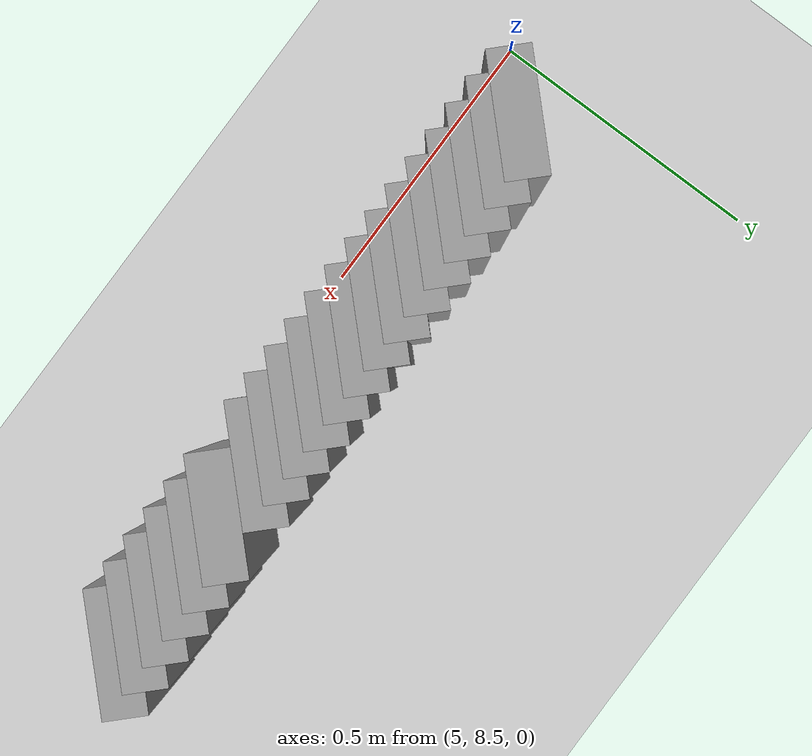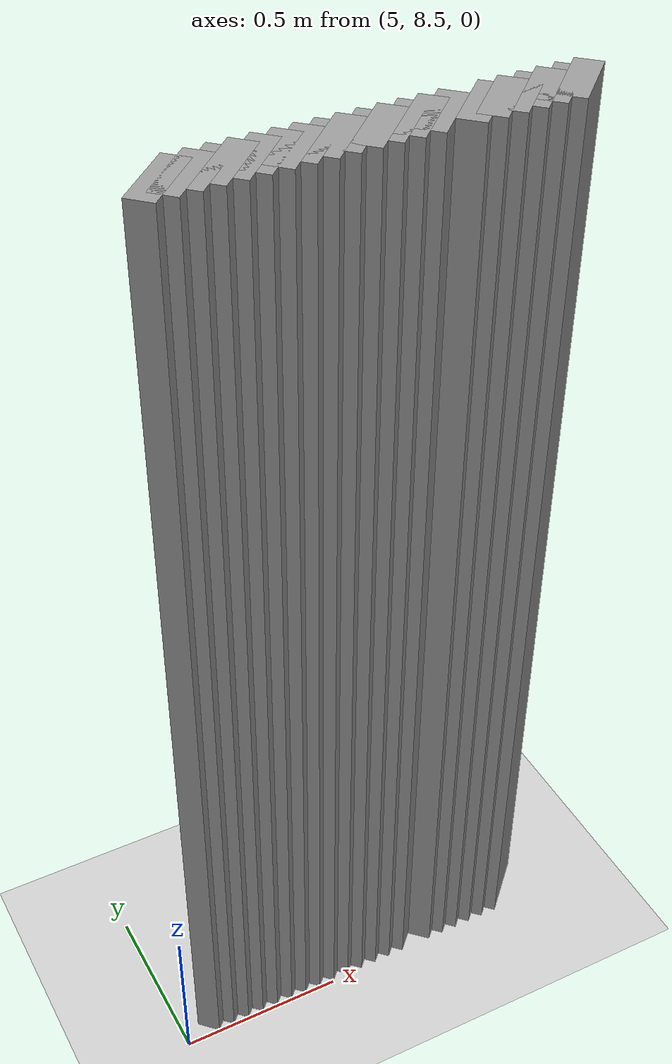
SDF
<sdf version="1.5">
 <world name="default">
  <include><uri>model://ground_plane</uri></include>
  <include><uri>model://sun</uri></include>
  <model name="grey_wall_3820">
   <static>1</static>
   <link name="link">
    <pose>5.15 8.6  1.4 0 0 -0.785398163397</pose>
    <collision name="collision"><geometry><box><size>0.0707106781187 .2  2.8</size></box></geometry></collision>
    <visual name="visual">
     <cast_shadows>0</cast_shadows>
     <geometry><box><size>0.0707106781187 .2  2.8</size></box></geometry>
     <material>
      <script>
       <uri>model://grey_wall/materials/scripts</uri>
       <uri>model://grey_wall/materials/textures</uri>
       <name>vrc/grey_wall</name>
      </script>
     </material>
    </visual>
   </link>
  </model>
  <model name="grey_wall_3821">
   <static>1</static>
   <link name="link">
    <pose>5.2 8.6  1.4 0 0 -0.785398163397</pose>
    <collision name="collision"><geometry><box><size>0.0707106781187 .2  2.8</size></box></geometry></collision>
    <visual name="visual">
     <cast_shadows>0</cast_shadows>
     <geometry><box><size>0.0707106781187 .2  2.8</size></box></geometry>
     <material>
      <script>
       <uri>model://grey_wall/materials/scripts</uri>
       <uri>model://grey_wall/materials/textures</uri>
       <name>vrc/grey_wall</name>
      </script>
     </material>
    </visual>
   </link>
  </model>
  <model name="grey_wall_3822">
   <static>1</static>
   <link name="link">
    <pose>5.25 8.6  1.4 0 0 -0.785398163397</pose>
    <collision name="collision"><geometry><box><size>0.0707106781187 .2  2.8</size></box></geometry></collision>
    <visual name="visual">
     <cast_shadows>0</cast_shadows>
     <geometry><box><size>0.0707106781187 .2  2.8</size></box></geometry>
     <material>
      <script>
       <uri>model://grey_wall/materials/scripts</uri>
       <uri>model://grey_wall/materials/textures</uri>
       <name>vrc/grey_wall</name>
      </script>
     </material>
    </visual>
   </link>
  </model>
  <model name="grey_wall_3823">
   <static>1</static>
   <link name="link">
    <pose>5.3 8.6  1.4 0 0 -0.785398163397</pose>
    <collision name="collision"><geometry><box><size>0.0707106781187 .2  2.8</size></box></geometry></collision>
    <visual name="visual">
     <cast_shadows>0</cast_shadows>
     <geometry><box><size>0.0707106781187 .2  2.8</size></box></geometry>
     <material>
      <script>
       <uri>model://grey_wall/materials/scripts</uri>
       <uri>model://grey_wall/materials/textures</uri>
       <name>vrc/grey_wall</name>
      </script>
     </material>
    </visual>
   </link>
  </model>
  <model name="grey_wall_3824">
   <static>1</static>
   <link name="link">
    <pose>5.35 8.6  1.4 0 0 -0.785398163397</pose>
    <collision name="collision"><geometry><box><size>0.0707106781187 .2  2.8</size></box></geometry></collision>
    <visual name="visual">
     <cast_shadows>0</cast_shadows>
     <geometry><box><size>0.0707106781187 .2  2.8</size></box></geometry>
     <material>
      <script>
       <uri>model://grey_wall/materials/scripts</uri>
       <uri>model://grey_wall/materials/textures</uri>
       <name>vrc/grey_wall</name>
      </script>
     </material>
    </visual>
   </link>
  </model>
  <model name="grey_wall_3825">
   <static>1</static>
   <link name="link">
    <pose>5.4 8.6  1.4 0 0 -0.785398163397</pose>
    <collision name="collision"><geometry><box><size>0.0707106781187 .2  2.8</size></box></geometry></collision>
    <visual name="visual">
     <cast_shadows>0</cast_shadows>
     <geometry><box><size>0.0707106781187 .2  2.8</size></box></geometry>
     <material>
      <script>
       <uri>model://grey_wall/materials/scripts</uri>
       <uri>model://grey_wall/materials/textures</uri>
       <name>vrc/grey_wall</name>
      </script>
     </material>
    </visual>
   </link>
  </model>
  <model name="grey_wall_3826">
   <static>1</static>
   <link name="link">
    <pose>5.45 8.6  1.4 0 0 -0.785398163397</pose>
    <collision name="collision"><geometry><box><size>0.0707106781187 .2  2.8</size></box></geometry></collision>
    <visual name="visual">
     <cast_shadows>0</cast_shadows>
     <geometry><box><size>0.0707106781187 .2  2.8</size></box></geometry>
     <material>
      <script>
       <uri>model://grey_wall/materials/scripts</uri>
       <uri>model://grey_wall/materials/textures</uri>
       <name>vrc/grey_wall</name>
      </script>
     </material>
    </visual>
   </link>
  </model>
  <model name="grey_wall_3827">
   <static>1</static>
   <link name="link">
    <pose>5.5 8.6  1.4 0 0 -0.785398163397</pose>
    <collision name="collision"><geometry><box><size>0.0707106781187 .2  2.8</size></box></geometry></collision>
    <visual name="visual">
     <cast_shadows>0</cast_shadows>
     <geometry><box><size>0.0707106781187 .2  2.8</size></box></geometry>
     <material>
      <script>
       <uri>model://grey_wall/materials/scripts</uri>
       <uri>model://grey_wall/materials/textures</uri>
       <name>vrc/grey_wall</name>
      </script>
     </material>
    </visual>
   </link>
  </model>
  <model name="grey_wall_3828">
   <static>1</static>
   <link name="link">
    <pose>5.55 8.6  1.4 0 0 -0.785398163397</pose>
    <collision name="collision"><geometry><box><size>0.0707106781187 .2  2.8</size></box></geometry></collision>
    <visual name="visual">
     <cast_shadows>0</cast_shadows>
     <geometry><box><size>0.0707106781187 .2  2.8</size></box></geometry>
     <material>
      <script>
       <uri>model://grey_wall/materials/scripts</uri>
       <uri>model://grey_wall/materials/textures</uri>
       <name>vrc/grey_wall</name>
      </script>
     </material>
    </visual>
   </link>
  </model>
  <model name="grey_wall_3829">
   <static>1</static>
   <link name="link">
    <pose>5.6 8.6  1.4 0 0 -0.785398163397</pose>
    <collision name="collision"><geometry><box><size>0.0707106781187 .2  2.8</size></box></geometry></collision>
    <visual name="visual">
     <cast_shadows>0</cast_shadows>
     <geometry><box><size>0.0707106781187 .2  2.8</size></box></geometry>
     <material>
      <script>
       <uri>model://grey_wall/materials/scripts</uri>
       <uri>model://grey_wall/materials/textures</uri>
       <name>vrc/grey_wall</name>
      </script>
     </material>
    </visual>
   </link>
  </model>
  <model name="grey_wall_3830">
   <static>1</static>
   <link name="link">
    <pose>5.65 8.6  1.4 0 0 -0.785398163397</pose>
    <collision name="collision"><geometry><box><size>0.0707106781187 .2  2.8</size></box></geometry></collision>
    <visual name="visual">
     <cast_shadows>0</cast_shadows>
     <geometry><box><size>0.0707106781187 .2  2.8</size></box></geometry>
     <material>
      <script>
       <uri>model://grey_wall/materials/scripts</uri>
       <uri>model://grey_wall/materials/textures</uri>
       <name>vrc/grey_wall</name>
      </script>
     </material>
    </visual>
   </link>
  </model>
  <model name="grey_wall_3831">
   <static>1</static>
   <link name="link">
    <pose>5.7 8.6  1.4 0 0 -0.785398163397</pose>
    <collision name="collision"><geometry><box><size>0.0707106781187 .2  2.8</size></box></geometry></collision>
    <visual name="visual">
     <cast_shadows>0</cast_shadows>
     <geometry><box><size>0.0707106781187 .2  2.8</size></box></geometry>
     <material>
      <script>
       <uri>model://grey_wall/materials/scripts</uri>
       <uri>model://grey_wall/materials/textures</uri>
       <name>vrc/grey_wall</name>
      </script>
     </material>
    </visual>
   </link>
  </model>
  <model name="grey_wall_3832">
   <static>1</static>
   <link name="link">
    <pose>5.75 8.6  1.4 0 0 -0.785398163397</pose>
    <collision name="collision"><geometry><box><size>0.0707106781187 .2  2.8</size></box></geometry></collision>
    <visual name="visual">
     <cast_shadows>0</cast_shadows>
     <geometry><box><size>0.0707106781187 .2  2.8</size></box></geometry>
     <material>
      <script>
       <uri>model://grey_wall/materials/scripts</uri>
       <uri>model://grey_wall/materials/textures</uri>
       <name>vrc/grey_wall</name>
      </script>
     </material>
    </visual>
   </link>
  </model>
  <model name="grey_wall_3833">
   <static>1</static>
   <link name="link">
    <pose>5.8 8.6  1.4 0 0 -0.785398163397</pose>
    <collision name="collision"><geometry><box><size>0.0707106781187 .2  2.8</size></box></geometry></collision>
    <visual name="visual">
     <cast_shadows>0</cast_shadows>
     <geometry><box><size>0.0707106781187 .2  2.8</size></box></geometry>
     <material>
      <script>
       <uri>model://grey_wall/materials/scripts</uri>
       <uri>model://grey_wall/materials/textures</uri>
       <name>vrc/grey_wall</name>
      </script>
     </material>
    </visual>
   </link>
  </model>
  <model name="grey_wall_3834">
   <static>1</static>
   <link name="link">
    <pose>5.9 8.6  1.4 0 0 -0.785398163397</pose>
    <collision name="collision"><geometry><box><size>0.0707106781187 .2  2.8</size></box></geometry></collision>
    <visual name="visual">
     <cast_shadows>0</cast_shadows>
     <geometry><box><size>0.0707106781187 .2  2.8</size></box></geometry>
     <material>
      <script>
       <uri>model://grey_wall/materials/scripts</uri>
       <uri>model://grey_wall/materials/textures</uri>
       <name>vrc/grey_wall</name>
      </script>
     </material>
    </visual>
   </link>
  </model>
  <model name="grey_wall_3835">
   <static>1</static>
   <link name="link">
    <pose>5.95 8.6  1.4 0 0 -0.785398163397</pose>
    <collision name="collision"><geometry><box><size>0.0707106781187 .2  2.8</size></box></geometry></collision>
    <visual name="visual">
     <cast_shadows>0</cast_shadows>
     <geometry><box><size>0.0707106781187 .2  2.8</size></box></geometry>
     <material>
      <script>
       <uri>model://grey_wall/materials/scripts</uri>
       <uri>model://grey_wall/materials/textures</uri>
       <name>vrc/grey_wall</name>
      </script>
     </material>
    </visual>
   </link>
  </model>
  <model name="grey_wall_3836">
   <static>1</static>
   <link name="link">
    <pose>6.0 8.6  1.4 0 0 -0.785398163397</pose>
    <collision name="collision"><geometry><box><size>0.0707106781187 .2  2.8</size></box></geometry></collision>
    <visual name="visual">
     <cast_shadows>0</cast_shadows>
     <geometry><box><size>0.0707106781187 .2  2.8</size></box></geometry>
     <material>
      <script>
       <uri>model://grey_wall/materials/scripts</uri>
       <uri>model://grey_wall/materials/textures</uri>
       <name>vrc/grey_wall</name>
      </script>
     </material>
    </visual>
   </link>
  </model>
  <model name="grey_wall_3837">
   <static>1</static>
   <link name="link">
    <pose>6.05 8.6  1.4 0 0 -0.785398163397</pose>
    <collision name="collision"><geometry><box><size>0.0707106781187 .2  2.8</size></box></geometry></collision>
    <visual name="visual">
     <cast_shadows>0</cast_shadows>
     <geometry><box><size>0.0707106781187 .2  2.8</size></box></geometry>
     <material>
      <script>
       <uri>model://grey_wall/materials/scripts</uri>
       <uri>model://grey_wall/materials/textures</uri>
       <name>vrc/grey_wall</name>
      </script>
     </material>
    </visual>
   </link>
  </model>
  <model name="grey_wall_3838">
   <static>1</static>
   <link name="link">
    <pose>6.1 8.6  1.4 0 0 -0.785398163397</pose>
    <collision name="collision"><geometry><box><size>0.0707106781187 .2  2.8</size></box></geometry></collision>
    <visual name="visual">
     <cast_shadows>0</cast_shadows>
     <geometry><box><size>0.0707106781187 .2  2.8</size></box></geometry>
     <material>
      <script>
       <uri>model://grey_wall/materials/scripts</uri>
       <uri>model://grey_wall/materials/textures</uri>
       <name>vrc/grey_wall</name>
      </script>
     </material>
    </visual>
   </link>
  </model>
  <model name="grey_wall_3839">
   <static>1</static>
   <link name="link">
    <pose>6.15 8.6  1.4 0 0 -0.785398163397</pose>
    <collision name="collision"><geometry><box><size>0.0707106781187 .2  2.8</size></box></geometry></collision>
    <visual name="visual">
     <cast_shadows>0</cast_shadows>
     <geometry><box><size>0.0707106781187 .2  2.8</size></box></geometry>
     <material>
      <script>
       <uri>model://grey_wall/materials/scripts</uri>
       <uri>model://grey_wall/materials/textures</uri>
       <name>vrc/grey_wall</name>
      </script>
     </material>
    </visual>
   </link>
  </model>
 </world>
</sdf>
